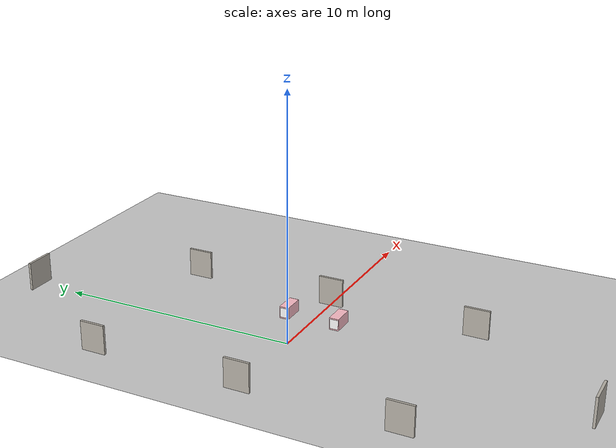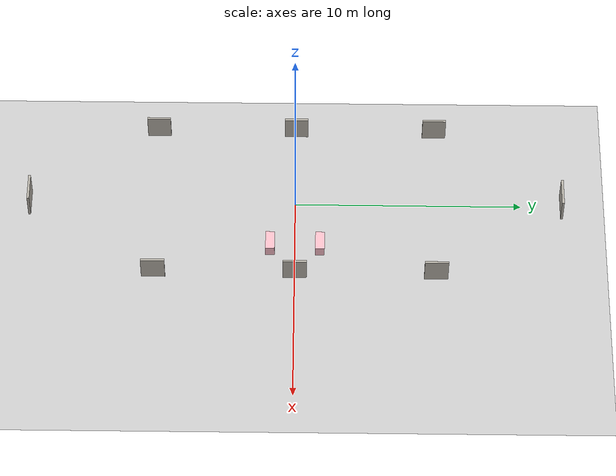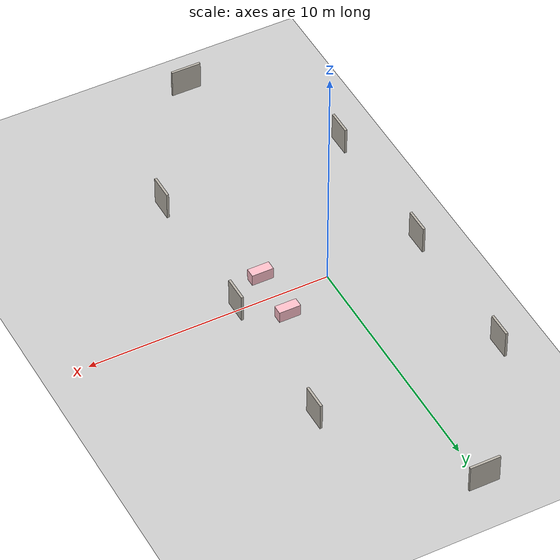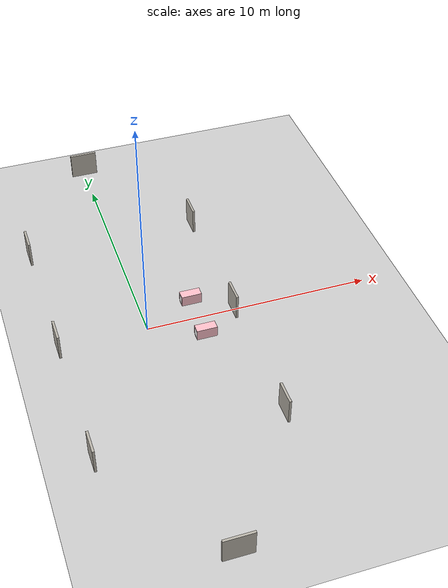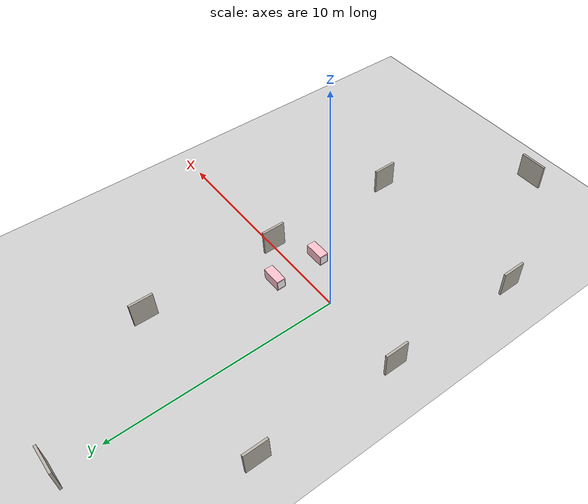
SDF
<sdf version="1.9">
 <world name="pig_pen_16units_world">
  <model name="ground_plane">
   <static>true</static>
   <link name="link">
    <collision name="collision">
     <geometry><plane><normal>0 0 1</normal><size>30 30</size></plane></geometry>
     <surface><friction><ode><mu>1.0</mu><mu2>1.0</mu2></ode></friction></surface>
    </collision>
    <visual name="visual">
     <geometry><plane><normal>0 0 1</normal><size>30 30</size></plane></geometry>
     <material>
      <ambient>0.8 0.8 0.8 1</ambient>
      <diffuse>0.8 0.8 0.8 1</diffuse>
      <specular>0.2 0.2 0.2 1</specular>
     </material>
    </visual>
   </link>
  </model>
  <include><uri>model://farm_pig</uri><name>pig11_a</name><pose>2.275 -1.095 0.27 0 0 3.1416</pose></include>
  <include><uri>model://farm_pig</uri><name>pig14_b</name><pose>2.275 1.095 0.27 0 0 3.1416</pose></include>
  <model name="corridor_end_walls">
   <static>true</static>
   <link name="main_end_north">
    <pose>0.000 11.790 0.600 0 0 0</pose>
    <collision name="collision"><geometry><box><size>1.25 0.10 1.20</size></box></geometry></collision>
    <visual name="visual">
     <geometry><box><size>1.25 0.10 1.20</size></box></geometry>
     <material>
      <ambient>0.62 0.60 0.56 1</ambient>
      <diffuse>0.72 0.70 0.66 1</diffuse>
      <specular>0.05 0.05 0.05 1</specular>
     </material>
    </visual>
   </link>
   <link name="main_end_south">
    <pose>0.000 -11.790 0.600 0 0 0</pose>
    <collision name="collision"><geometry><box><size>1.25 0.10 1.20</size></box></geometry></collision>
    <visual name="visual">
     <geometry><box><size>1.25 0.10 1.20</size></box></geometry>
     <material>
      <ambient>0.62 0.60 0.56 1</ambient>
      <diffuse>0.72 0.70 0.66 1</diffuse>
      <specular>0.05 0.05 0.05 1</specular>
     </material>
    </visual>
   </link>
   <link name="branch1_end_west">
    <pose>-3.875 -6.180 0.600 0 0 0</pose>
    <collision name="collision"><geometry><box><size>0.10 1.04 1.20</size></box></geometry></collision>
    <visual name="visual">
     <geometry><box><size>0.10 1.04 1.20</size></box></geometry>
     <material>
      <ambient>0.62 0.60 0.56 1</ambient>
      <diffuse>0.72 0.70 0.66 1</diffuse>
      <specular>0.05 0.05 0.05 1</specular>
     </material>
    </visual>
   </link>
   <link name="branch1_end_east">
    <pose>3.875 -6.180 0.600 0 0 0</pose>
    <collision name="collision"><geometry><box><size>0.10 1.04 1.20</size></box></geometry></collision>
    <visual name="visual">
     <geometry><box><size>0.10 1.04 1.20</size></box></geometry>
     <material>
      <ambient>0.62 0.60 0.56 1</ambient>
      <diffuse>0.72 0.70 0.66 1</diffuse>
      <specular>0.05 0.05 0.05 1</specular>
     </material>
    </visual>
   </link>
   <link name="branch2_end_west">
    <pose>-3.875 0.000 0.600 0 0 0</pose>
    <collision name="collision"><geometry><box><size>0.10 1.04 1.20</size></box></geometry></collision>
    <visual name="visual">
     <geometry><box><size>0.10 1.04 1.20</size></box></geometry>
     <material>
      <ambient>0.62 0.60 0.56 1</ambient>
      <diffuse>0.72 0.70 0.66 1</diffuse>
      <specular>0.05 0.05 0.05 1</specular>
     </material>
    </visual>
   </link>
   <link name="branch2_end_east">
    <pose>3.875 0.000 0.600 0 0 0</pose>
    <collision name="collision"><geometry><box><size>0.10 1.04 1.20</size></box></geometry></collision>
    <visual name="visual">
     <geometry><box><size>0.10 1.04 1.20</size></box></geometry>
     <material>
      <ambient>0.62 0.60 0.56 1</ambient>
      <diffuse>0.72 0.70 0.66 1</diffuse>
      <specular>0.05 0.05 0.05 1</specular>
     </material>
    </visual>
   </link>
   <link name="branch3_end_west">
    <pose>-3.875 6.180 0.600 0 0 0</pose>
    <collision name="collision"><geometry><box><size>0.10 1.04 1.20</size></box></geometry></collision>
    <visual name="visual">
     <geometry><box><size>0.10 1.04 1.20</size></box></geometry>
     <material>
      <ambient>0.62 0.60 0.56 1</ambient>
      <diffuse>0.72 0.70 0.66 1</diffuse>
      <specular>0.05 0.05 0.05 1</specular>
     </material>
    </visual>
   </link>
   <link name="branch3_end_east">
    <pose>3.875 6.180 0.600 0 0 0</pose>
    <collision name="collision"><geometry><box><size>0.10 1.04 1.20</size></box></geometry></collision>
    <visual name="visual">
     <geometry><box><size>0.10 1.04 1.20</size></box></geometry>
     <material>
      <ambient>0.62 0.60 0.56 1</ambient>
      <diffuse>0.72 0.70 0.66 1</diffuse>
      <specular>0.05 0.05 0.05 1</specular>
     </material>
    </visual>
   </link>
  </model>
 </world>
</sdf>
